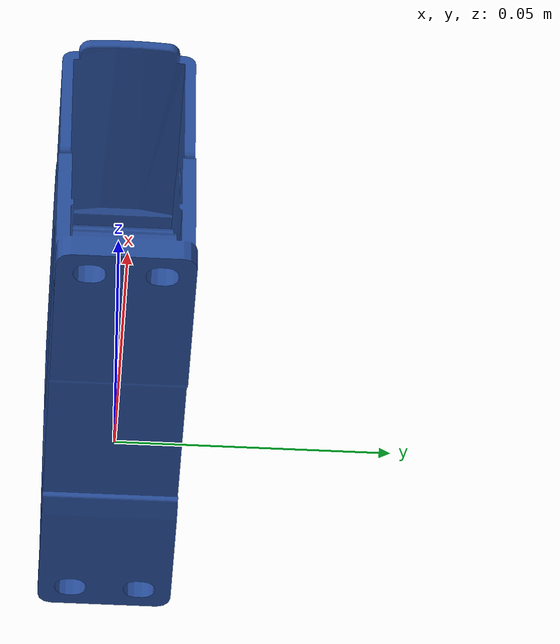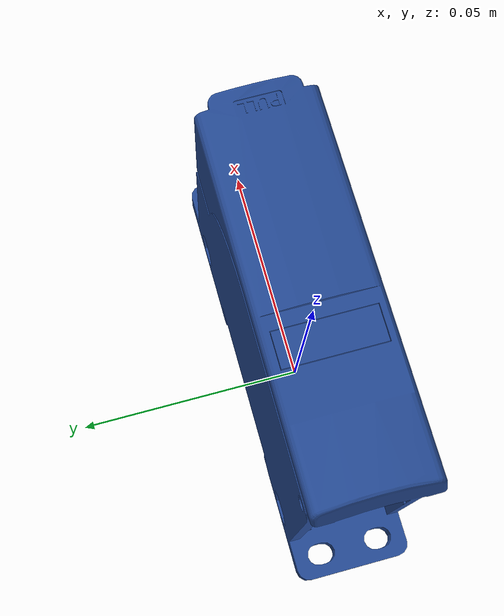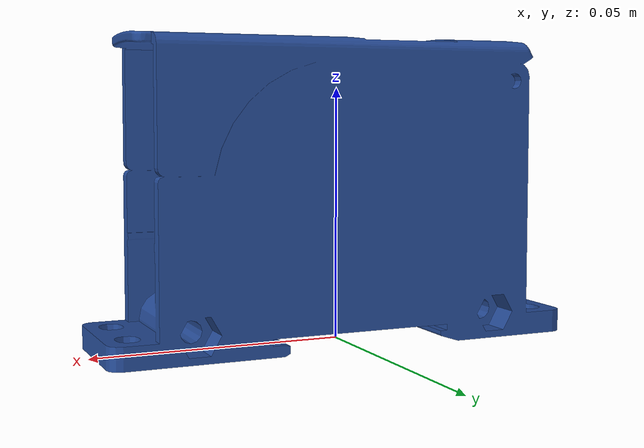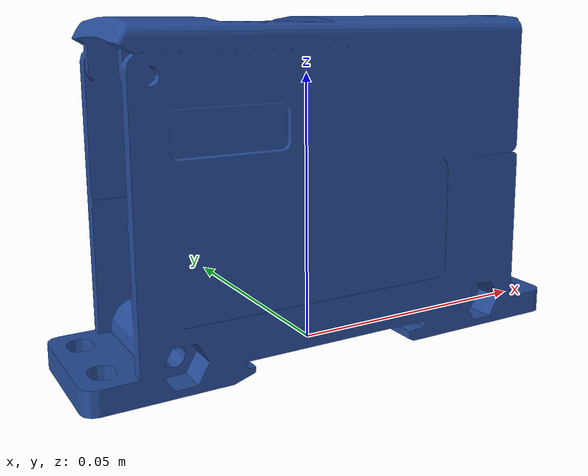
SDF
<?xml version="1.0" ?>
<sdf version="1.6">
  <model name="pdu_sps25_m66xm4">
    <link name="link">
      <gravity>false</gravity>
      <visual name="visual">
        <geometry>
          <mesh>
            <uri>file:///root/workcell_ws_classic/src/descriptions/ur_description/meshes/feeder/elec/objects/PDU_SPS25-M66XM4.STL</uri>
            <scale>1 1 1</scale>
          </mesh>
        </geometry>
        <material>
          <!-- Blue for PDU -->
          <ambient>0.1 0.2 0.5 1</ambient>
          <diffuse>0.15 0.3 0.6 1</diffuse>
          <specular>0.3 0.4 0.7 1</specular>
          <emissive>0 0 0 1</emissive>
        </material>
      </visual>

        <inertial>
          <mass>0.3</mass>
          <inertia>
            <ixx>0.001</ixx>
            <ixy>0</ixy>
            <ixz>0</ixz>
            <iyy>0.001</iyy>
            <iyz>0</iyz>
            <izz>0.001</izz>
          </inertia>
        </inertial>
    </link>
  </model>
</sdf>
